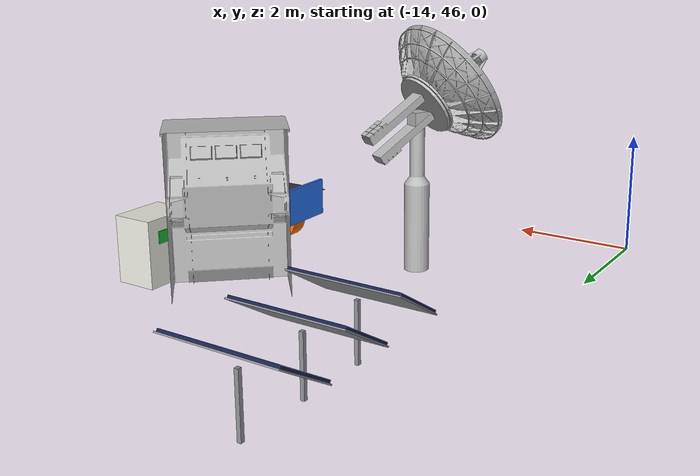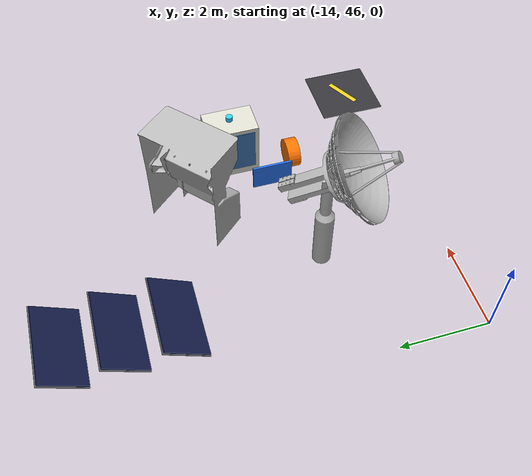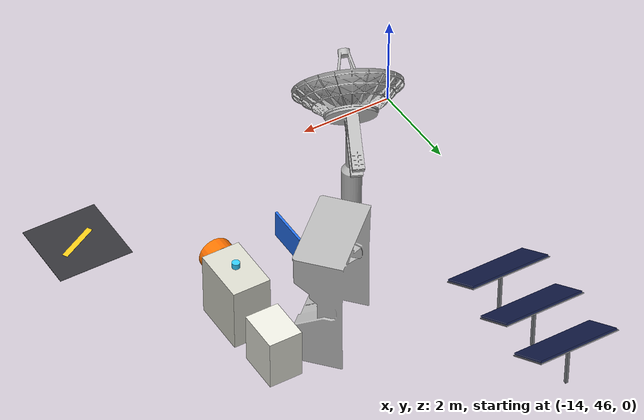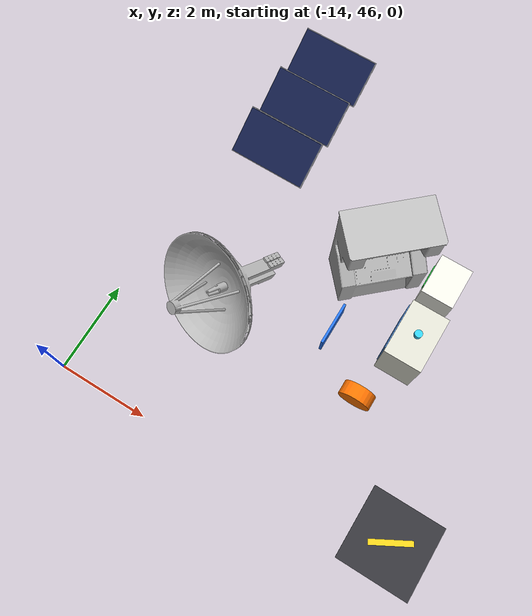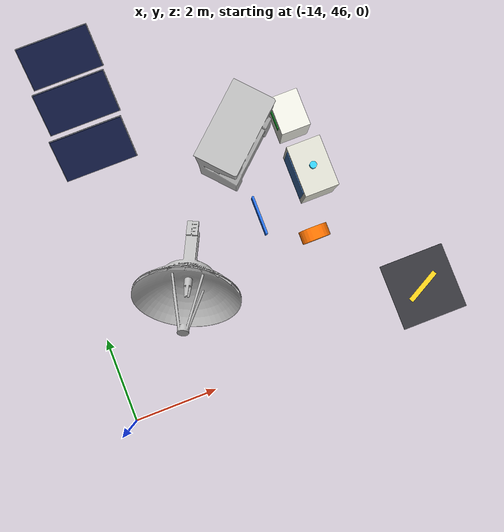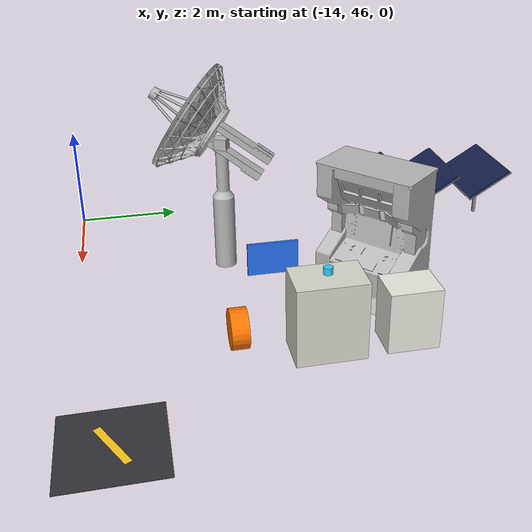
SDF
<sdf version="1.9">
 <world name="living_map">
  <model name="ona_a">
   <static>true</static>
   <link name="console">
    <pose>-9.6 51.3 0 0 0 0.7328</pose>
    <visual name="v">
     <geometry><mesh><uri>model://control_console/meshes/console.obj</uri></mesh></geometry>
    </visual>
    <collision name="c">
     <pose>0 0 1.3 0 0 0</pose>
     <geometry><box><size>1.78 1.0 2.6</size></box></geometry>
    </collision>
   </link>
   <link name="hub">
    <pose>-8.1 50.0 0.7 0 0 0</pose>
    <collision name="c"><geometry><box><size>0.8 1.2 1.4</size></box></geometry></collision>
    <visual name="v">
     <geometry><box><size>0.8 1.2 1.4</size></box></geometry>
     <material>
      <ambient>0.85 0.85 0.8 1</ambient>
      <diffuse>0.85 0.85 0.8 1</diffuse>
      <specular>0.1 0.1 0.1 1</specular>
     </material>
     <cast_shadows>false</cast_shadows>
    </visual>
   </link>
   <link name="hub_door">
    <pose>-8.51 50.0 0.75 0 0 0</pose>
    <visual name="v">
     <geometry><box><size>0.02 1.0 1.1</size></box></geometry>
     <material>
      <ambient>0.25 0.45 0.7 1</ambient>
      <diffuse>0.25 0.45 0.7 1</diffuse>
      <specular>0.1 0.1 0.1 1</specular>
     </material>
     <cast_shadows>false</cast_shadows>
    </visual>
   </link>
   <link name="led">
    <pose>-8.1 50.0 1.5 0 0 0</pose>
    <visual name="v">
     <geometry><cylinder><radius>0.08</radius><length>0.12</length></cylinder></geometry>
     <material>
      <ambient>0.2 0.8 1 1</ambient>
      <diffuse>0.2 0.8 1 1</diffuse>
      <specular>0.1 0.1 0.1 1</specular>
      <emissive>0.2 0.8 1 1</emissive>
     </material>
     <cast_shadows>false</cast_shadows>
    </visual>
   </link>
   <link name="reel">
    <pose>-8.5 48.6 0.35 1.5708 0 0</pose>
    <visual name="v">
     <geometry><cylinder><radius>0.35</radius><length>0.3</length></cylinder></geometry>
     <material>
      <ambient>1 0.45 0 1</ambient>
      <diffuse>1 0.45 0 1</diffuse>
      <specular>0.1 0.1 0.1 1</specular>
     </material>
     <cast_shadows>false</cast_shadows>
    </visual>
   </link>
   <link name="dish_mount">
    <pose>-11.4 48.8 0 0 0 -1.9872</pose>
    <visual name="v">
     <geometry><mesh><uri>model://lm_dish/meshes/dish_mount.obj</uri><scale>1.0 1.0 1.0</scale></mesh></geometry>
    </visual>
   </link>
   <link name="dish_reflector">
    <pose>-11.4 48.8 2.628 0 1.0163 -1.9872</pose>
    <visual name="v">
     <geometry>
      <mesh><uri>model://lm_dish/meshes/dish_reflector.obj</uri><scale>1.0 1.0 1.0</scale></mesh>
     </geometry>
    </visual>
   </link>
   <link name="sign">
    <pose>-9.6 49.4 1.0 0 0 0</pose>
    <visual name="v">
     <geometry><box><size>0.05 0.9 0.6</size></box></geometry>
     <material>
      <ambient>0.15 0.45 0.95 1</ambient>
      <diffuse>0.15 0.45 0.95 1</diffuse>
      <specular>0.1 0.1 0.1 1</specular>
     </material>
     <cast_shadows>false</cast_shadows>
    </visual>
   </link>
   <link name="solar0">
    <pose>-12.6 52.2 1.0 0 0.55 -1.5708</pose>
    <visual name="panel">
     <geometry><box><size>1.0 1.7 0.04</size></box></geometry>
     <material>
      <ambient>0.08 0.12 0.3 1</ambient>
      <diffuse>0.08 0.12 0.3 1</diffuse>
      <specular>0.1 0.1 0.1 1</specular>
      <emissive>0.02 0.03 0.08 1</emissive>
     </material>
     <cast_shadows>false</cast_shadows>
    </visual>
    <visual name="frame">
     <pose>0 0 -0.03 0 0 0</pose>
     <geometry><box><size>1.04 1.74 0.02</size></box></geometry>
     <material>
      <ambient>0.55 0.56 0.58 1</ambient>
      <diffuse>0.55 0.56 0.58 1</diffuse>
      <specular>0.1 0.1 0.1 1</specular>
     </material>
     <cast_shadows>false</cast_shadows>
    </visual>
   </link>
   <link name="solar_leg0">
    <pose>-12.6 52.300000000000004 0.45 0 0 0</pose>
    <visual name="v">
     <geometry><box><size>0.06 0.06 0.9</size></box></geometry>
     <material>
      <ambient>0.55 0.56 0.58 1</ambient>
      <diffuse>0.55 0.56 0.58 1</diffuse>
      <specular>0.1 0.1 0.1 1</specular>
     </material>
     <cast_shadows>false</cast_shadows>
    </visual>
   </link>
   <link name="solar1">
    <pose>-12.6 53.35 1.0 0 0.55 -1.5708</pose>
    <visual name="panel">
     <geometry><box><size>1.0 1.7 0.04</size></box></geometry>
     <material>
      <ambient>0.08 0.12 0.3 1</ambient>
      <diffuse>0.08 0.12 0.3 1</diffuse>
      <specular>0.1 0.1 0.1 1</specular>
      <emissive>0.02 0.03 0.08 1</emissive>
     </material>
     <cast_shadows>false</cast_shadows>
    </visual>
    <visual name="frame">
     <pose>0 0 -0.03 0 0 0</pose>
     <geometry><box><size>1.04 1.74 0.02</size></box></geometry>
     <material>
      <ambient>0.55 0.56 0.58 1</ambient>
      <diffuse>0.55 0.56 0.58 1</diffuse>
      <specular>0.1 0.1 0.1 1</specular>
     </material>
     <cast_shadows>false</cast_shadows>
    </visual>
   </link>
   <link name="solar_leg1">
    <pose>-12.6 53.45 0.45 0 0 0</pose>
    <visual name="v">
     <geometry><box><size>0.06 0.06 0.9</size></box></geometry>
     <material>
      <ambient>0.55 0.56 0.58 1</ambient>
      <diffuse>0.55 0.56 0.58 1</diffuse>
      <specular>0.1 0.1 0.1 1</specular>
     </material>
     <cast_shadows>false</cast_shadows>
    </visual>
   </link>
   <link name="solar2">
    <pose>-12.6 54.5 1.0 0 0.55 -1.5708</pose>
    <visual name="panel">
     <geometry><box><size>1.0 1.7 0.04</size></box></geometry>
     <material>
      <ambient>0.08 0.12 0.3 1</ambient>
      <diffuse>0.08 0.12 0.3 1</diffuse>
      <specular>0.1 0.1 0.1 1</specular>
      <emissive>0.02 0.03 0.08 1</emissive>
     </material>
     <cast_shadows>false</cast_shadows>
    </visual>
    <visual name="frame">
     <pose>0 0 -0.03 0 0 0</pose>
     <geometry><box><size>1.04 1.74 0.02</size></box></geometry>
     <material>
      <ambient>0.55 0.56 0.58 1</ambient>
      <diffuse>0.55 0.56 0.58 1</diffuse>
      <specular>0.1 0.1 0.1 1</specular>
     </material>
     <cast_shadows>false</cast_shadows>
    </visual>
   </link>
   <link name="solar_leg2">
    <pose>-12.6 54.6 0.45 0 0 0</pose>
    <visual name="v">
     <geometry><box><size>0.06 0.06 0.9</size></box></geometry>
     <material>
      <ambient>0.55 0.56 0.58 1</ambient>
      <diffuse>0.55 0.56 0.58 1</diffuse>
      <specular>0.1 0.1 0.1 1</specular>
     </material>
     <cast_shadows>false</cast_shadows>
    </visual>
   </link>
   <link name="battery">
    <pose>-8.1 51.4 0.55 0 0 0</pose>
    <collision name="c"><geometry><box><size>0.7 0.9 1.1</size></box></geometry></collision>
    <visual name="v">
     <geometry><box><size>0.7 0.9 1.1</size></box></geometry>
     <material>
      <ambient>0.92 0.92 0.88 1</ambient>
      <diffuse>0.92 0.92 0.88 1</diffuse>
      <specular>0.1 0.1 0.1 1</specular>
     </material>
     <cast_shadows>false</cast_shadows>
    </visual>
   </link>
   <link name="battery_label">
    <pose>-8.46 51.4 0.8 0 0 0</pose>
    <visual name="v">
     <geometry><box><size>0.02 0.5 0.2</size></box></geometry>
     <material>
      <ambient>0.1 0.7 0.2 1</ambient>
      <diffuse>0.1 0.7 0.2 1</diffuse>
      <specular>0.1 0.1 0.1 1</specular>
     </material>
     <cast_shadows>false</cast_shadows>
    </visual>
   </link>
   <link name="charger">
    <pose>-6.5 46.5 0.004 0 0 0</pose>
    <visual name="pad">
     <geometry><box><size>1.6 1.6 0.008</size></box></geometry>
     <material>
      <ambient>0.2 0.2 0.22 1</ambient>
      <diffuse>0.2 0.2 0.22 1</diffuse>
      <specular>0.1 0.1 0.1 1</specular>
     </material>
     <cast_shadows>false</cast_shadows>
    </visual>
    <visual name="bolt">
     <pose>0 0 0.005 0 0 0.5</pose>
     <geometry><box><size>0.9 0.12 0.004</size></box></geometry>
     <material>
      <ambient>1 0.8 0.1 1</ambient>
      <diffuse>1 0.8 0.1 1</diffuse>
      <specular>0.1 0.1 0.1 1</specular>
      <emissive>0.5 0.4 0 1</emissive>
     </material>
     <cast_shadows>false</cast_shadows>
    </visual>
   </link>
  </model>
 </world>
</sdf>
